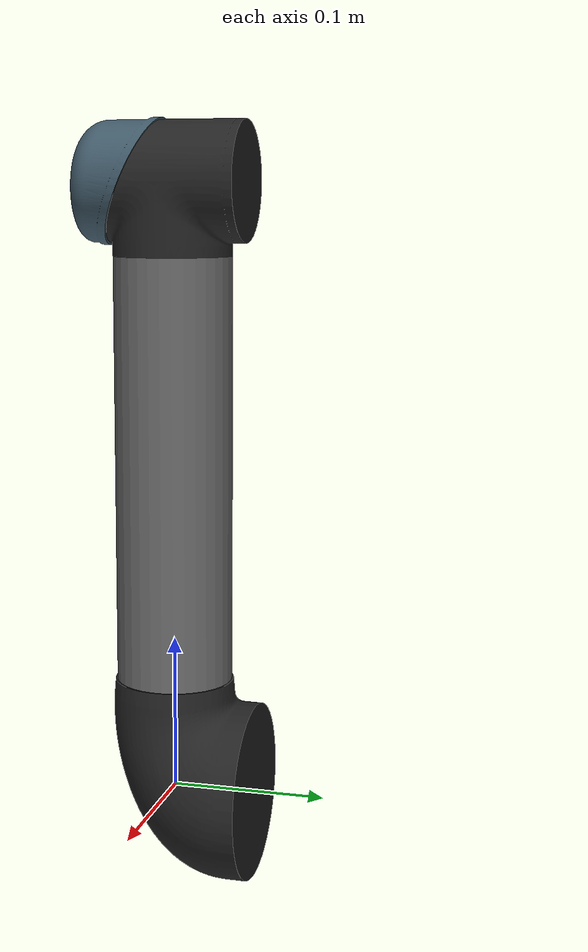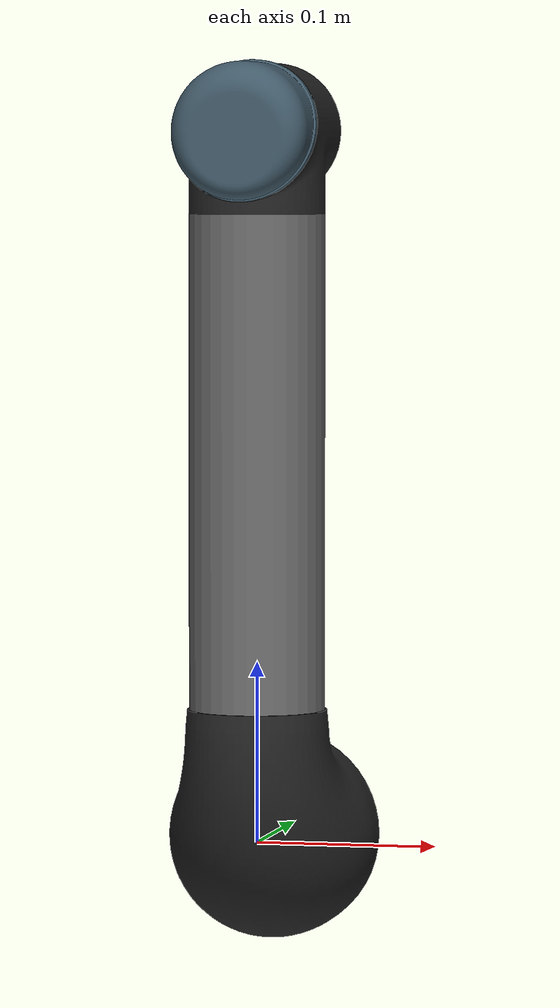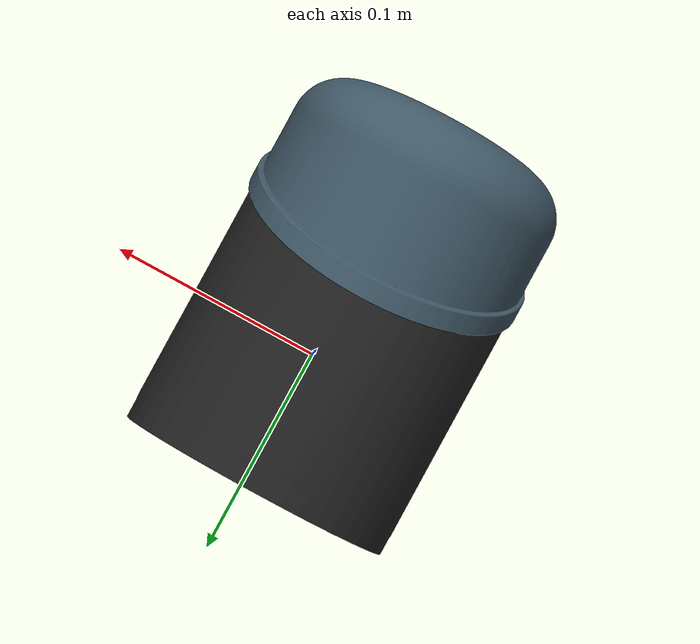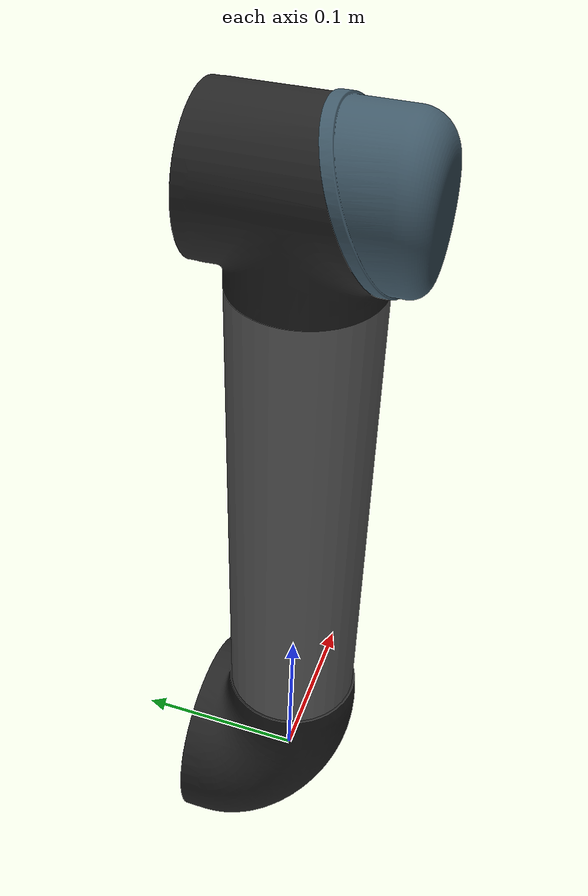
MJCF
<mujoco model="forearm">
  <default>
    <default class="visual">
      <geom group="2" type="mesh" contype="0" conaffinity="0"/>
    </default>
    <default class="collision">
      <geom group="3" type="mesh"/>
    </default>
  </default>
  <asset>
    <material name="material_forearm_0" specular="0.20000000000000004" shininess="1.0" rgba="0.25098039 0.34901961 0.40784314 1.0"/>
    <material name="material_forearm_1" specular="0.20000000000000004" shininess="1.0" rgba="0.41960784 0.41960784 0.41960784 1.0"/>
    <material name="material_forearm_2" specular="0.20000000000000004" shininess="1.0" rgba="0.14117647 0.14117647 0.14117647 1.0"/>
    <mesh file="forearm_0.obj"/>
    <mesh file="forearm_1.obj"/>
    <mesh file="forearm_2.obj"/>
  </asset>
  <worldbody>
    <body name="forearm">
      <geom mesh="forearm_0" material="material_forearm_2" class="visual"/>
      <geom mesh="forearm_1" material="material_forearm_1" class="visual"/>
      <geom mesh="forearm_2" material="material_forearm_0" class="visual"/>
      <geom mesh="forearm_0" class="collision"/>
      <geom mesh="forearm_1" class="collision"/>
      <geom mesh="forearm_2" class="collision"/>
    </body>
  </worldbody>
</mujoco>
